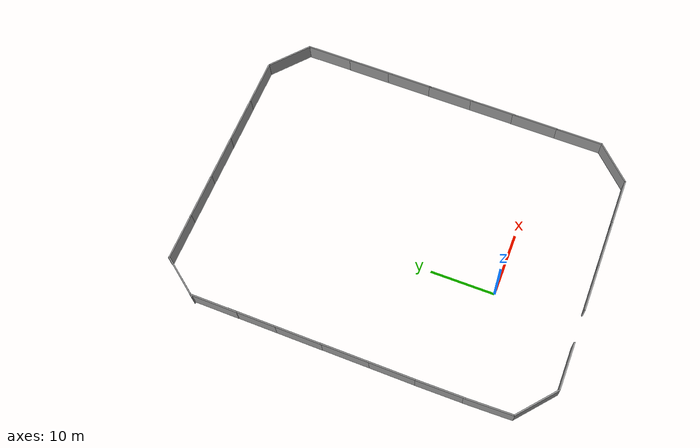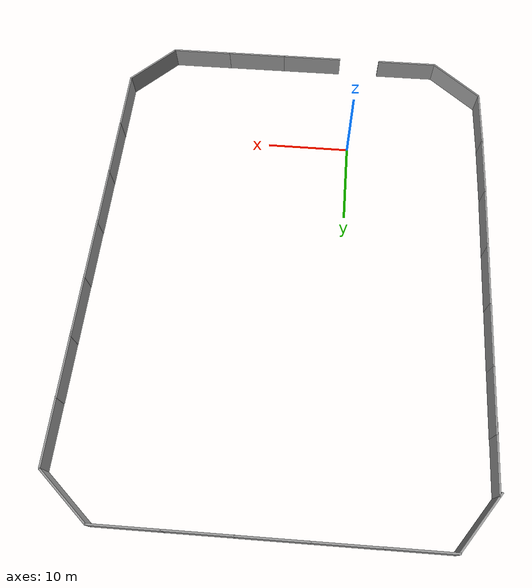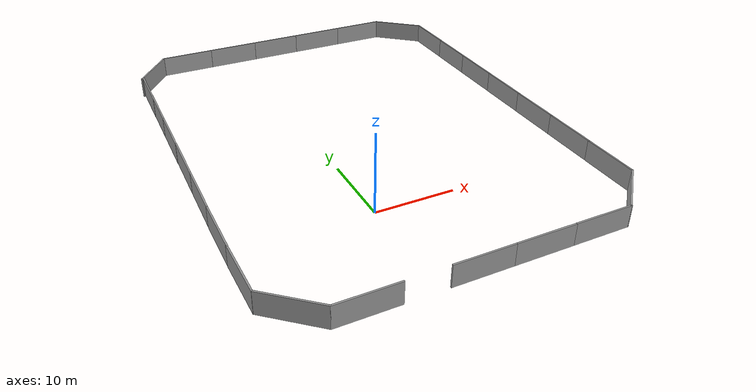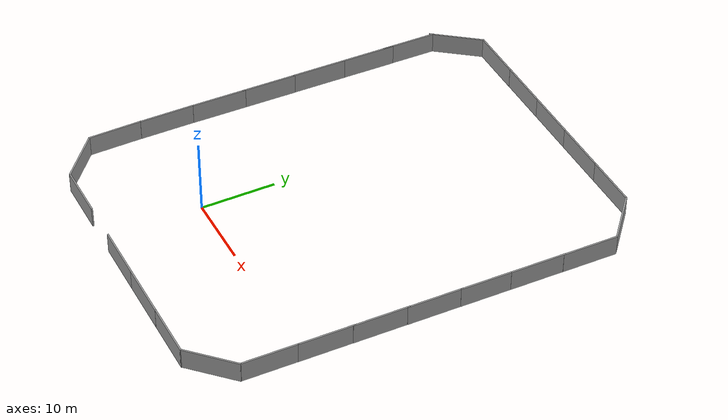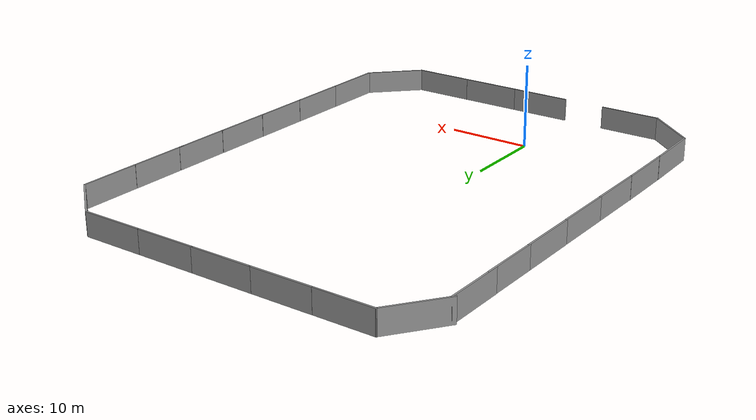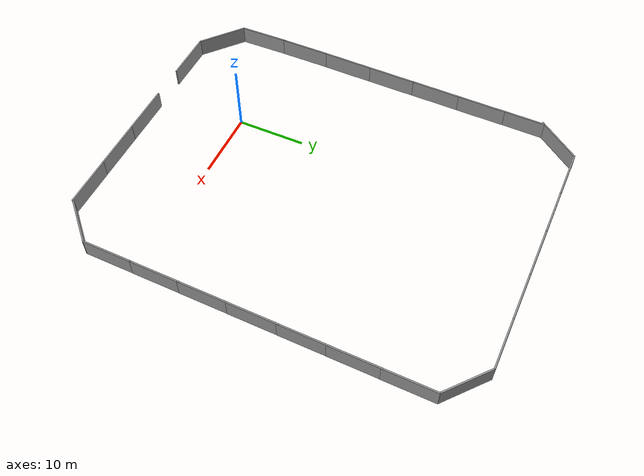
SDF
<sdf version="1.7">
 <world name="default">
  <light name="sun" type="directional">
   <pose>0 0 10 0 -0 0</pose>
   <diffuse>0.8 0.8 0.8 1</diffuse>
   <specular>0.2 0.2 0.2 1</specular>
   <attenuation>
    <range>1000</range>
    <constant>0.9</constant>
    <linear>0.01</linear>
    <quadratic>0.001</quadratic>
   </attenuation>
   <direction>-0.5 0.1 -0.9</direction>
   <spot><inner_angle>0</inner_angle><outer_angle>0</outer_angle><falloff>0</falloff></spot>
  </light>
  <gravity>0 0 -9.8</gravity>
  <magnetic_field>6e-06 2.3e-05 -4.2e-05</magnetic_field>
  <atmosphere type="adiabatic"/>
  <physics type="ode">
   <max_step_size>0.001</max_step_size>
   <real_time_factor>1</real_time_factor>
   <real_time_update_rate>1000</real_time_update_rate>
  </physics>
  <scene><ambient>0.4 0.4 0.4 1</ambient><background>0.53 0.8 0.92 1</background><shadows>1</shadows></scene>
  <audio><device>default</device></audio>
  <spherical_coordinates>
   <surface_model>EARTH_WGS84</surface_model>
   <latitude_deg>0</latitude_deg>
   <longitude_deg>0</longitude_deg>
   <elevation>0</elevation>
   <heading_deg>0</heading_deg>
  </spherical_coordinates>
  <model name="grey_wall">
   <static>1</static>
   <link name="link">
    <pose>0 0 1.4 0 -0 0</pose>
    <collision name="collision"><geometry><box><size>7.5 0.2 2.8</size></box></geometry></collision>
    <visual name="visual">
     <cast_shadows>0</cast_shadows>
     <geometry><box><size>7.5 0.2 2.8</size></box></geometry>
     <material>
      <script>
       <uri>model://grey_wall/materials/scripts</uri>
       <uri>model://grey_wall/materials/textures</uri>
       <name>vrc/grey_wall</name>
      </script>
     </material>
    </visual>
   </link>
   <pose>-7.35968 -13.1135 -0.73233 0 -0 0</pose>
  </model>
  <model name="grey_wall_clone_0">
   <static>1</static>
   <link name="link">
    <pose>0 0 1.4 0 -0 0</pose>
    <collision name="collision"><geometry><box><size>7.5 0.2 2.8</size></box></geometry></collision>
    <visual name="visual">
     <cast_shadows>0</cast_shadows>
     <geometry><box><size>7.5 0.2 2.8</size></box></geometry>
     <material>
      <script>
       <uri>model://grey_wall/materials/scripts</uri>
       <uri>model://grey_wall/materials/textures</uri>
       <name>vrc/grey_wall</name>
      </script>
     </material>
    </visual>
   </link>
   <pose>5.30544 -13.1131 -0.73233 0 -0 0</pose>
  </model>
  <model name="grey_wall_clone">
   <static>1</static>
   <link name="link">
    <pose>0 0 1.4 0 -0 0</pose>
    <collision name="collision"><geometry><box><size>7.5 0.2 2.8</size></box></geometry></collision>
    <visual name="visual">
     <cast_shadows>0</cast_shadows>
     <geometry><box><size>7.5 0.2 2.8</size></box></geometry>
     <material>
      <script>
       <uri>model://grey_wall/materials/scripts</uri>
       <uri>model://grey_wall/materials/textures</uri>
       <name>vrc/grey_wall</name>
      </script>
     </material>
    </visual>
   </link>
   <pose>12.7452 -13.1147 -0.73233 0 -0 0</pose>
  </model>
  <model name="grey_wall_clone_1">
   <static>1</static>
   <link name="link">
    <pose>0 0 1.4 0 -0 0</pose>
    <collision name="collision"><geometry><box><size>7.5 0.2 2.8</size></box></geometry></collision>
    <visual name="visual">
     <cast_shadows>0</cast_shadows>
     <geometry><box><size>7.5 0.2 2.8</size></box></geometry>
     <material>
      <script>
       <uri>model://grey_wall/materials/scripts</uri>
       <uri>model://grey_wall/materials/textures</uri>
       <name>vrc/grey_wall</name>
      </script>
     </material>
    </visual>
   </link>
   <pose>20.1831 -13.1079 -0.73233 0 -0 0</pose>
  </model>
  <model name="grey_wall_clone_2">
   <static>1</static>
   <link name="link">
    <pose>0 0 1.4 0 -0 0</pose>
    <collision name="collision"><geometry><box><size>7.5 0.2 2.8</size></box></geometry></collision>
    <visual name="visual">
     <cast_shadows>0</cast_shadows>
     <geometry><box><size>7.5 0.2 2.8</size></box></geometry>
     <material>
      <script>
       <uri>model://grey_wall/materials/scripts</uri>
       <uri>model://grey_wall/materials/textures</uri>
       <name>vrc/grey_wall</name>
      </script>
     </material>
    </visual>
   </link>
   <pose>26.4198 -10.4984 -0.73233 0 -0 0.787647</pose>
  </model>
  <model name="grey_wall_clone_2_clone">
   <static>1</static>
   <link name="link">
    <pose>0 0 1.4 0 -0 0</pose>
    <collision name="collision"><geometry><box><size>7.5 0.2 2.8</size></box></geometry></collision>
    <visual name="visual">
     <cast_shadows>0</cast_shadows>
     <geometry><box><size>7.5 0.2 2.8</size></box></geometry>
     <material>
      <script>
       <uri>model://grey_wall/materials/scripts</uri>
       <uri>model://grey_wall/materials/textures</uri>
       <name>vrc/grey_wall</name>
      </script>
     </material>
    </visual>
   </link>
   <pose>29.0311 -4.20898 -0.73233 0 -0 1.56011</pose>
  </model>
  <model name="grey_wall_clone_2_clone_clone">
   <static>1</static>
   <link name="link">
    <pose>0 0 1.4 0 -0 0</pose>
    <collision name="collision"><geometry><box><size>7.5 0.2 2.8</size></box></geometry></collision>
    <visual name="visual">
     <cast_shadows>0</cast_shadows>
     <geometry><box><size>7.5 0.2 2.8</size></box></geometry>
     <material>
      <script>
       <uri>model://grey_wall/materials/scripts</uri>
       <uri>model://grey_wall/materials/textures</uri>
       <name>vrc/grey_wall</name>
      </script>
     </material>
    </visual>
   </link>
   <pose>29.1283 3.09424 -0.73233 0 -0 1.56011</pose>
  </model>
  <model name="grey_wall_clone_2_clone_clone_0">
   <static>1</static>
   <link name="link">
    <pose>0 0 1.4 0 -0 0</pose>
    <collision name="collision"><geometry><box><size>7.5 0.2 2.8</size></box></geometry></collision>
    <visual name="visual">
     <cast_shadows>0</cast_shadows>
     <geometry><box><size>7.5 0.2 2.8</size></box></geometry>
     <material>
      <script>
       <uri>model://grey_wall/materials/scripts</uri>
       <uri>model://grey_wall/materials/textures</uri>
       <name>vrc/grey_wall</name>
      </script>
     </material>
    </visual>
   </link>
   <pose>29.2213 10.1982 -0.73233 0 -0 1.56011</pose>
  </model>
  <model name="grey_wall_clone_2_clone_clone_1">
   <static>1</static>
   <link name="link">
    <pose>0 0 1.4 0 -0 0</pose>
    <collision name="collision"><geometry><box><size>7.5 0.2 2.8</size></box></geometry></collision>
    <visual name="visual">
     <cast_shadows>0</cast_shadows>
     <geometry><box><size>7.5 0.2 2.8</size></box></geometry>
     <material>
      <script>
       <uri>model://grey_wall/materials/scripts</uri>
       <uri>model://grey_wall/materials/textures</uri>
       <name>vrc/grey_wall</name>
      </script>
     </material>
    </visual>
   </link>
   <pose>29.3197 17.3067 -0.73233 0 -0 1.56011</pose>
  </model>
  <model name="grey_wall_clone_2_clone_clone_2">
   <static>1</static>
   <link name="link">
    <pose>0 0 1.4 0 -0 0</pose>
    <collision name="collision"><geometry><box><size>7.5 0.2 2.8</size></box></geometry></collision>
    <visual name="visual">
     <cast_shadows>0</cast_shadows>
     <geometry><box><size>7.5 0.2 2.8</size></box></geometry>
     <material>
      <script>
       <uri>model://grey_wall/materials/scripts</uri>
       <uri>model://grey_wall/materials/textures</uri>
       <name>vrc/grey_wall</name>
      </script>
     </material>
    </visual>
   </link>
   <pose>29.4159 24.4181 -0.73233 0 -0 1.56011</pose>
  </model>
  <model name="grey_wall_clone_2_clone_clone_3">
   <static>1</static>
   <link name="link">
    <pose>0 0 1.4 0 -0 0</pose>
    <collision name="collision"><geometry><box><size>7.5 0.2 2.8</size></box></geometry></collision>
    <visual name="visual">
     <cast_shadows>0</cast_shadows>
     <geometry><box><size>7.5 0.2 2.8</size></box></geometry>
     <material>
      <script>
       <uri>model://grey_wall/materials/scripts</uri>
       <uri>model://grey_wall/materials/textures</uri>
       <name>vrc/grey_wall</name>
      </script>
     </material>
    </visual>
   </link>
   <pose>29.5026 31.2215 -0.73233 0 -0 1.56011</pose>
  </model>
  <model name="grey_wall_clone_2_clone_clone_4">
   <static>1</static>
   <link name="link">
    <pose>0 0 1.4 0 -0 0</pose>
    <collision name="collision"><geometry><box><size>7.5 0.2 2.8</size></box></geometry></collision>
    <visual name="visual">
     <cast_shadows>0</cast_shadows>
     <geometry><box><size>7.5 0.2 2.8</size></box></geometry>
     <material>
      <script>
       <uri>model://grey_wall/materials/scripts</uri>
       <uri>model://grey_wall/materials/textures</uri>
       <name>vrc/grey_wall</name>
      </script>
     </material>
    </visual>
   </link>
   <pose>29.6021 38.4483 -0.73233 0 -0 1.56011</pose>
  </model>
  <model name="grey_wall_clone_2_clone_0">
   <static>1</static>
   <link name="link">
    <pose>0 0 1.4 0 -0 0</pose>
    <collision name="collision"><geometry><box><size>7.5 0.2 2.8</size></box></geometry></collision>
    <visual name="visual">
     <cast_shadows>0</cast_shadows>
     <geometry><box><size>7.5 0.2 2.8</size></box></geometry>
     <material>
      <script>
       <uri>model://grey_wall/materials/scripts</uri>
       <uri>model://grey_wall/materials/textures</uri>
       <name>vrc/grey_wall</name>
      </script>
     </material>
    </visual>
   </link>
   <pose>26.8084 44.583 -0.73233 0 0 -0.707669</pose>
  </model>
  <model name="grey_wall_clone_1_clone">
   <static>1</static>
   <link name="link">
    <pose>0 0 1.4 0 -0 0</pose>
    <collision name="collision"><geometry><box><size>7.5 0.2 2.8</size></box></geometry></collision>
    <visual name="visual">
     <cast_shadows>0</cast_shadows>
     <geometry><box><size>7.5 0.2 2.8</size></box></geometry>
     <material>
      <script>
       <uri>model://grey_wall/materials/scripts</uri>
       <uri>model://grey_wall/materials/textures</uri>
       <name>vrc/grey_wall</name>
      </script>
     </material>
    </visual>
   </link>
   <pose>20.2976 46.9817 -0.73233 0 -0 0</pose>
  </model>
  <model name="grey_wall_clone_1_clone_0">
   <static>1</static>
   <link name="link">
    <pose>0 0 1.4 0 -0 0</pose>
    <collision name="collision"><geometry><box><size>7.5 0.2 2.8</size></box></geometry></collision>
    <visual name="visual">
     <cast_shadows>0</cast_shadows>
     <geometry><box><size>7.5 0.2 2.8</size></box></geometry>
     <material>
      <script>
       <uri>model://grey_wall/materials/scripts</uri>
       <uri>model://grey_wall/materials/textures</uri>
       <name>vrc/grey_wall</name>
      </script>
     </material>
    </visual>
   </link>
   <pose>12.9342 46.978 -0.73233 0 -0 0</pose>
  </model>
  <model name="grey_wall_clone_1_clone_1">
   <static>1</static>
   <link name="link">
    <pose>0 0 1.4 0 -0 0</pose>
    <collision name="collision"><geometry><box><size>7.5 0.2 2.8</size></box></geometry></collision>
    <visual name="visual">
     <cast_shadows>0</cast_shadows>
     <geometry><box><size>7.5 0.2 2.8</size></box></geometry>
     <material>
      <script>
       <uri>model://grey_wall/materials/scripts</uri>
       <uri>model://grey_wall/materials/textures</uri>
       <name>vrc/grey_wall</name>
      </script>
     </material>
    </visual>
   </link>
   <pose>5.67675 46.9837 -0.73233 0 -0 0</pose>
  </model>
  <model name="grey_wall_clone_1_clone_2">
   <static>1</static>
   <link name="link">
    <pose>0 0 1.4 0 -0 0</pose>
    <collision name="collision"><geometry><box><size>7.5 0.2 2.8</size></box></geometry></collision>
    <visual name="visual">
     <cast_shadows>0</cast_shadows>
     <geometry><box><size>7.5 0.2 2.8</size></box></geometry>
     <material>
      <script>
       <uri>model://grey_wall/materials/scripts</uri>
       <uri>model://grey_wall/materials/textures</uri>
       <name>vrc/grey_wall</name>
      </script>
     </material>
    </visual>
   </link>
   <pose>-1.57191 46.983 -0.73233 0 -0 0</pose>
  </model>
  <model name="grey_wall_clone_1_clone_3">
   <static>1</static>
   <link name="link">
    <pose>0 0 1.4 0 -0 0</pose>
    <collision name="collision"><geometry><box><size>7.5 0.2 2.8</size></box></geometry></collision>
    <visual name="visual">
     <cast_shadows>0</cast_shadows>
     <geometry><box><size>7.5 0.2 2.8</size></box></geometry>
     <material>
      <script>
       <uri>model://grey_wall/materials/scripts</uri>
       <uri>model://grey_wall/materials/textures</uri>
       <name>vrc/grey_wall</name>
      </script>
     </material>
    </visual>
   </link>
   <pose>-8.71911 46.972 -0.73233 0 -0 0</pose>
  </model>
  <model name="grey_wall_clone_2_clone_1">
   <static>1</static>
   <link name="link">
    <pose>0 0 1.4 0 -0 0</pose>
    <collision name="collision"><geometry><box><size>7.5 0.2 2.8</size></box></geometry></collision>
    <visual name="visual">
     <cast_shadows>0</cast_shadows>
     <geometry><box><size>7.5 0.2 2.8</size></box></geometry>
     <material>
      <script>
       <uri>model://grey_wall/materials/scripts</uri>
       <uri>model://grey_wall/materials/textures</uri>
       <name>vrc/grey_wall</name>
      </script>
     </material>
    </visual>
   </link>
   <pose>-14.5433 44.0457 -0.73233 0 -0 0.924913</pose>
  </model>
  <model name="grey_wall_clone_2_clone_clone_5">
   <static>1</static>
   <link name="link">
    <pose>0 0 1.4 0 -0 0</pose>
    <collision name="collision"><geometry><box><size>7.5 0.2 2.8</size></box></geometry></collision>
    <visual name="visual">
     <cast_shadows>0</cast_shadows>
     <geometry><box><size>7.5 0.2 2.8</size></box></geometry>
     <material>
      <script>
       <uri>model://grey_wall/materials/scripts</uri>
       <uri>model://grey_wall/materials/textures</uri>
       <name>vrc/grey_wall</name>
      </script>
     </material>
    </visual>
   </link>
   <pose>-16.541 37.7503 -0.73233 0 -0 1.56011</pose>
  </model>
  <model name="grey_wall_clone_2_clone_clone_6">
   <static>1</static>
   <link name="link">
    <pose>0 0 1.4 0 -0 0</pose>
    <collision name="collision"><geometry><box><size>7.5 0.2 2.8</size></box></geometry></collision>
    <visual name="visual">
     <cast_shadows>0</cast_shadows>
     <geometry><box><size>7.5 0.2 2.8</size></box></geometry>
     <material>
      <script>
       <uri>model://grey_wall/materials/scripts</uri>
       <uri>model://grey_wall/materials/textures</uri>
       <name>vrc/grey_wall</name>
      </script>
     </material>
    </visual>
   </link>
   <pose>-16.5792 31.6391 -0.73233 0 -0 1.56011</pose>
  </model>
  <model name="grey_wall_clone_2_clone_clone_7">
   <static>1</static>
   <link name="link">
    <pose>0 0 1.4 0 -0 0</pose>
    <collision name="collision"><geometry><box><size>7.5 0.2 2.8</size></box></geometry></collision>
    <visual name="visual">
     <cast_shadows>0</cast_shadows>
     <geometry><box><size>7.5 0.2 2.8</size></box></geometry>
     <material>
      <script>
       <uri>model://grey_wall/materials/scripts</uri>
       <uri>model://grey_wall/materials/textures</uri>
       <name>vrc/grey_wall</name>
      </script>
     </material>
    </visual>
   </link>
   <pose>-16.6522 24.3852 -0.73233 0 -0 1.56011</pose>
  </model>
  <model name="grey_wall_clone_2_clone_clone_8">
   <static>1</static>
   <link name="link">
    <pose>0 0 1.4 0 -0 0</pose>
    <collision name="collision"><geometry><box><size>7.5 0.2 2.8</size></box></geometry></collision>
    <visual name="visual">
     <cast_shadows>0</cast_shadows>
     <geometry><box><size>7.5 0.2 2.8</size></box></geometry>
     <material>
      <script>
       <uri>model://grey_wall/materials/scripts</uri>
       <uri>model://grey_wall/materials/textures</uri>
       <name>vrc/grey_wall</name>
      </script>
     </material>
    </visual>
   </link>
   <pose>-16.7099 17.0927 -0.73233 0 -0 1.56011</pose>
  </model>
  <model name="grey_wall_clone_2_clone_clone_9">
   <static>1</static>
   <link name="link">
    <pose>0 0 1.4 0 -0 0</pose>
    <collision name="collision"><geometry><box><size>7.5 0.2 2.8</size></box></geometry></collision>
    <visual name="visual">
     <cast_shadows>0</cast_shadows>
     <geometry><box><size>7.5 0.2 2.8</size></box></geometry>
     <material>
      <script>
       <uri>model://grey_wall/materials/scripts</uri>
       <uri>model://grey_wall/materials/textures</uri>
       <name>vrc/grey_wall</name>
      </script>
     </material>
    </visual>
   </link>
   <pose>-16.7807 9.94438 -0.73233 0 -0 1.56011</pose>
  </model>
  <model name="grey_wall_clone_2_clone_clone_10">
   <static>1</static>
   <link name="link">
    <pose>0 0 1.4 0 -0 0</pose>
    <collision name="collision"><geometry><box><size>7.5 0.2 2.8</size></box></geometry></collision>
    <visual name="visual">
     <cast_shadows>0</cast_shadows>
     <geometry><box><size>7.5 0.2 2.8</size></box></geometry>
     <material>
      <script>
       <uri>model://grey_wall/materials/scripts</uri>
       <uri>model://grey_wall/materials/textures</uri>
       <name>vrc/grey_wall</name>
      </script>
     </material>
    </visual>
   </link>
   <pose>-16.8243 2.56369 -0.73233 0 -0 1.5727</pose>
  </model>
  <model name="grey_wall_clone_2_clone_clone_11">
   <static>1</static>
   <link name="link">
    <pose>0 0 1.4 0 -0 0</pose>
    <collision name="collision"><geometry><box><size>7.5 0.2 2.8</size></box></geometry></collision>
    <visual name="visual">
     <cast_shadows>0</cast_shadows>
     <geometry><box><size>7.5 0.2 2.8</size></box></geometry>
     <material>
      <script>
       <uri>model://grey_wall/materials/scripts</uri>
       <uri>model://grey_wall/materials/textures</uri>
       <name>vrc/grey_wall</name>
      </script>
     </material>
    </visual>
   </link>
   <pose>-16.7616 -4.60523 -0.73233 0 -0 1.59096</pose>
  </model>
  <model name="grey_wall_clone_2_clone_0_clone">
   <static>1</static>
   <link name="link">
    <pose>0 0 1.4 0 -0 0</pose>
    <collision name="collision"><geometry><box><size>7.5 0.2 2.8</size></box></geometry></collision>
    <visual name="visual">
     <cast_shadows>0</cast_shadows>
     <geometry><box><size>7.5 0.2 2.8</size></box></geometry>
     <material>
      <script>
       <uri>model://grey_wall/materials/scripts</uri>
       <uri>model://grey_wall/materials/textures</uri>
       <name>vrc/grey_wall</name>
      </script>
     </material>
    </visual>
   </link>
   <pose>-13.8649 -10.7038 -0.73233 0 0 -0.707669</pose>
  </model>
 </world>
</sdf>
